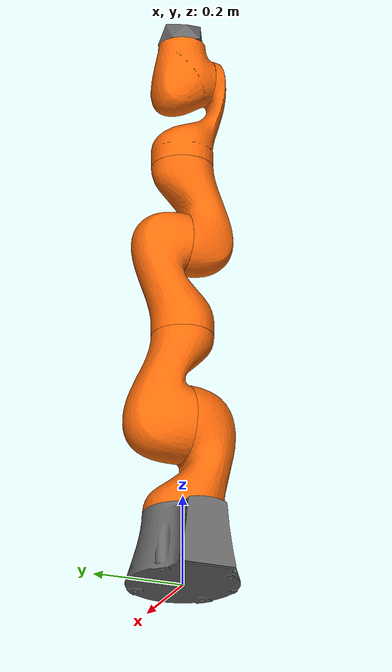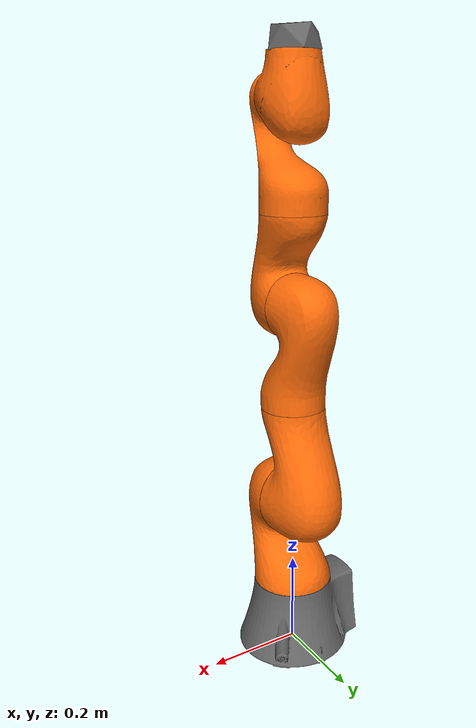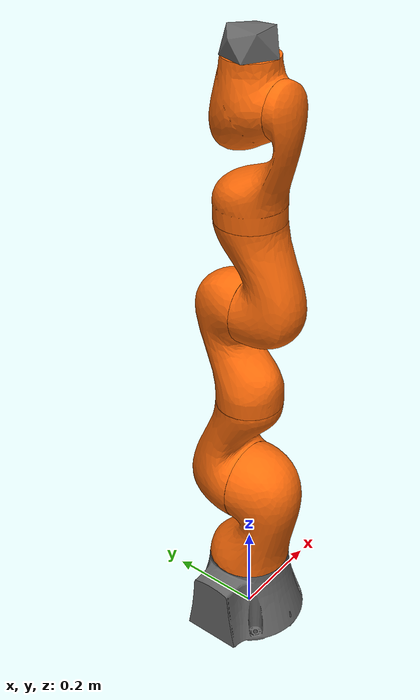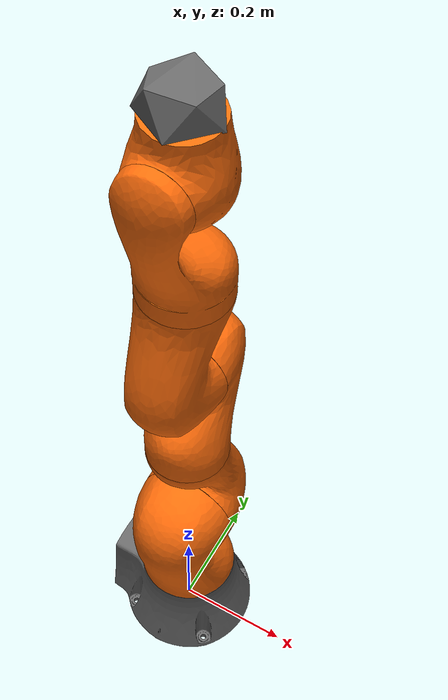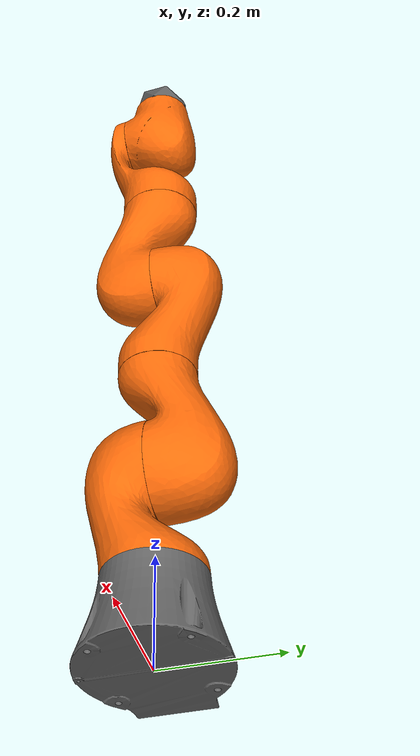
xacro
<?xml version="1.0" ?>
<!-- |    This document was autogenerated by xacro from iiwa14.urdf.xacro              | -->
<!-- |    EDITING THIS FILE BY HAND IS NOT RECOMMENDED                                 | -->
<robot name="iiwa14" xmlns:xacro="http://www.ros.org/wiki/xacro">
  <material name="Black">
    <color rgba="0.0 0.0 0.0 1.0"/>
  </material>
  <material name="Blue">
    <color rgba="0.0 0.0 0.8 1.0"/>
  </material>
  <material name="Green">
    <color rgba="0.0 0.8 0.0 1.0"/>
  </material>
  <material name="Grey">
    <color rgba="0.4 0.4 0.4 1.0"/>
  </material>
  <material name="Orange">
    <color rgba="1.0 0.423529411765 0.0392156862745 1.0"/>
  </material>
  <material name="Brown">
    <color rgba="0.870588235294 0.811764705882 0.764705882353 1.0"/>
  </material>
  <material name="Red">
    <color rgba="0.8 0.0 0.0 1.0"/>
  </material>
  <material name="White">
    <color rgba="1.0 1.0 1.0 1.0"/>
  </material>
  <!-- Fix to world just for testing -->
  <link name="world"/>
  <!--joint between {parent} and link_0-->
  <joint name="world_iiwa_joint" type="fixed">
    <origin rpy="0 0 0" xyz="0 0 0"/>
    <parent link="world"/>
    <child link="iiwa_link_0"/>
  </joint>
  <link name="iiwa_link_0">
    <inertial>
      <origin rpy="0 0 0" xyz="-0.1 0 0.07"/>
      <mass value="5"/>
      <inertia ixx="0.05" ixy="0" ixz="0" iyy="0.06" iyz="0" izz="0.03"/>
    </inertial>
    <visual>
      <origin rpy="0 0 0" xyz="0 0 0"/>
      <geometry>
        <mesh filename="package://iiwa_description/meshes/iiwa14/visual/link_0.stl"/>
      </geometry>
      <material name="Grey"/>
    </visual>
    <collision>
      <origin rpy="0 0 0" xyz="0 0 0"/>
      <geometry>
        <mesh filename="package://iiwa_description/meshes/iiwa14/collision/link_0_s.stl"/>
      </geometry>
      <material name="Grey"/>
    </collision>
  </link>
  <!-- joint between link_0 and link_1 -->
  <joint name="iiwa_joint_1" type="revolute">
    <parent link="iiwa_link_0"/>
    <child link="iiwa_link_1"/>
    <origin rpy="0 0 0" xyz="0 0 0.1575"/>
    <axis xyz="0 0 1"/>
    <limit effort="300" lower="-2.96705972839" upper="2.96705972839" velocity="10"/>
    <safety_controller k_position="100" k_velocity="2" soft_lower_limit="-2.93215314335" soft_upper_limit="2.93215314335"/>
    <dynamics damping="0.5"/>
  </joint>
  <link name="iiwa_link_1">
    <inertial>
      <origin rpy="0 0 0" xyz="0 -0.03 0.12"/>
      <mass value="4"/>
      <inertia ixx="0.1" ixy="0" ixz="0" iyy="0.09" iyz="0" izz="0.02"/>
    </inertial>
    <visual>
      <origin rpy="0 0 0" xyz="0 0 0"/>
      <geometry>
        <mesh filename="package://iiwa_description/meshes/iiwa14/visual/link_1.stl"/>
      </geometry>
      <material name="Orange"/>
    </visual>
    <collision>
      <origin rpy="0 0 0" xyz="0 0 0"/>
      <geometry>
        <mesh filename="package://iiwa_description/meshes/iiwa14/collision/link_1_s.stl"/>
      </geometry>
      <material name="Orange"/>
    </collision>
  </link>
  <!-- joint between link_1 and link_2 -->
  <joint name="iiwa_joint_2" type="revolute">
    <parent link="iiwa_link_1"/>
    <child link="iiwa_link_2"/>
    <origin rpy="1.57079632679   0 3.14159265359" xyz="0 0 0.2025"/>
    <axis xyz="0 0 1"/>
    <limit effort="300" lower="-2.09439510239" upper="2.09439510239" velocity="10"/>
    <safety_controller k_position="100" k_velocity="2" soft_lower_limit="-2.05948851735" soft_upper_limit="2.05948851735"/>
    <dynamics damping="0.5"/>
  </joint>
  <link name="iiwa_link_2">
    <inertial>
      <origin rpy="0 0 0" xyz="0.0003 0.059 0.042"/>
      <mass value="4"/>
      <inertia ixx="0.05" ixy="0" ixz="0" iyy="0.018" iyz="0" izz="0.044"/>
    </inertial>
    <visual>
      <origin rpy="0 0 0" xyz="0 0 0"/>
      <geometry>
        <mesh filename="package://iiwa_description/meshes/iiwa14/visual/link_2.stl"/>
      </geometry>
      <material name="Orange"/>
    </visual>
    <collision>
      <origin rpy="0 0 0" xyz="0 0 0"/>
      <geometry>
        <mesh filename="package://iiwa_description/meshes/iiwa14/collision/link_2_s.stl"/>
      </geometry>
      <material name="Orange"/>
    </collision>
  </link>
  <!-- joint between link_2 and link_3 -->
  <joint name="iiwa_joint_3" type="revolute">
    <parent link="iiwa_link_2"/>
    <child link="iiwa_link_3"/>
    <origin rpy="1.57079632679 0 3.14159265359" xyz="0 0.2045 0"/>
    <axis xyz="0 0 1"/>
    <limit effort="300" lower="-2.96705972839" upper="2.96705972839" velocity="10"/>
    <safety_controller k_position="100" k_velocity="2" soft_lower_limit="-2.93215314335" soft_upper_limit="2.93215314335"/>
    <dynamics damping="0.5"/>
  </joint>
  <link name="iiwa_link_3">
    <inertial>
      <origin rpy="0 0 0" xyz="0 0.03 0.13"/>
      <mass value="3"/>
      <inertia ixx="0.08" ixy="0" ixz="0" iyy="0.075" iyz="0" izz="0.01"/>
    </inertial>
    <visual>
      <origin rpy="0 0 0" xyz="0 0 0"/>
      <geometry>
        <mesh filename="package://iiwa_description/meshes/iiwa14/visual/link_3.stl"/>
      </geometry>
      <material name="Orange"/>
    </visual>
    <collision>
      <origin rpy="0 0 0" xyz="0 0 0"/>
      <geometry>
        <mesh filename="package://iiwa_description/meshes/iiwa14/collision/link_3_s.stl"/>
      </geometry>
      <material name="Orange"/>
    </collision>
  </link>
  <!-- joint between link_3 and link_4 -->
  <joint name="iiwa_joint_4" type="revolute">
    <parent link="iiwa_link_3"/>
    <child link="iiwa_link_4"/>
    <origin rpy="1.57079632679 0 0" xyz="0 0 0.2155"/>
    <axis xyz="0 0 1"/>
    <limit effort="300" lower="-2.09439510239" upper="2.09439510239" velocity="10"/>
    <safety_controller k_position="100" k_velocity="2" soft_lower_limit="-2.05948851735" soft_upper_limit="2.05948851735"/>
    <dynamics damping="0.5"/>
  </joint>
  <link name="iiwa_link_4">
    <inertial>
      <origin rpy="0 0 0" xyz="0 0.067 0.034"/>
      <mass value="2.7"/>
      <inertia ixx="0.03" ixy="0" ixz="0" iyy="0.01" iyz="0" izz="0.029"/>
    </inertial>
    <visual>
      <origin rpy="0 0 0" xyz="0 0 0"/>
      <geometry>
        <mesh filename="package://iiwa_description/meshes/iiwa14/visual/link_4.stl"/>
      </geometry>
      <material name="Orange"/>
    </visual>
    <collision>
      <origin rpy="0 0 0" xyz="0 0 0"/>
      <geometry>
        <mesh filename="package://iiwa_description/meshes/iiwa14/collision/link_4_s.stl"/>
      </geometry>
      <material name="Orange"/>
    </collision>
  </link>
  <!-- joint between link_4 and link_5 -->
  <joint name="iiwa_joint_5" type="revolute">
    <parent link="iiwa_link_4"/>
    <child link="iiwa_link_5"/>
    <origin rpy="-1.57079632679 3.14159265359 0" xyz="0 0.1845 0"/>
    <axis xyz="0 0 1"/>
    <limit effort="300" lower="-2.96705972839" upper="2.96705972839" velocity="10"/>
    <safety_controller k_position="100" k_velocity="2" soft_lower_limit="-2.93215314335" soft_upper_limit="2.93215314335"/>
    <dynamics damping="0.5"/>
  </joint>
  <link name="iiwa_link_5">
    <inertial>
      <origin rpy="0 0 0" xyz="0.0001 0.021 0.076"/>
      <mass value="1.7"/>
      <inertia ixx="0.02" ixy="0" ixz="0" iyy="0.018" iyz="0" izz="0.005"/>
    </inertial>
    <visual>
      <origin rpy="0 0 0" xyz="0 0 0"/>
      <geometry>
        <mesh filename="package://iiwa_description/meshes/iiwa14/visual/link_5.stl"/>
      </geometry>
      <material name="Orange"/>
    </visual>
    <collision>
      <origin rpy="0 0 0" xyz="0 0 0"/>
      <geometry>
        <mesh filename="package://iiwa_description/meshes/iiwa14/collision/link_5_s.stl"/>
      </geometry>
      <material name="Orange"/>
    </collision>
  </link>
  <!-- joint between link_5 and link_6 -->
  <joint name="iiwa_joint_6" type="revolute">
    <parent link="iiwa_link_5"/>
    <child link="iiwa_link_6"/>
    <origin rpy="1.57079632679 0 0" xyz="0 0 0.2155"/>
    <axis xyz="0 0 1"/>
    <limit effort="300" lower="-2.09439510239" upper="2.09439510239" velocity="10"/>
    <safety_controller k_position="100" k_velocity="2" soft_lower_limit="-2.05948851735" soft_upper_limit="2.05948851735"/>
    <dynamics damping="0.5"/>
  </joint>
  <link name="iiwa_link_6">
    <inertial>
      <origin rpy="0 0 0" xyz="0 0.0006 0.0004"/>
      <mass value="1.8"/>
      <inertia ixx="0.005" ixy="0" ixz="0" iyy="0.0036" iyz="0" izz="0.0047"/>
    </inertial>
    <visual>
      <origin rpy="0 0 0" xyz="0 0 0"/>
      <geometry>
        <mesh filename="package://iiwa_description/meshes/iiwa14/visual/link_6.stl"/>
      </geometry>
      <material name="Orange"/>
    </visual>
    <collision>
      <origin rpy="0 0 0" xyz="0 0 0"/>
      <geometry>
        <mesh filename="package://iiwa_description/meshes/iiwa14/collision/link_6_s.stl"/>
      </geometry>
      <material name="Orange"/>
    </collision>
  </link>
  <!-- joint between link_6 and link_7 -->
  <joint name="iiwa_joint_7" type="revolute">
    <parent link="iiwa_link_6"/>
    <child link="iiwa_link_7"/>
    <origin rpy="-1.57079632679 3.14159265359 0" xyz="0 0.081 0"/>
    <axis xyz="0 0 1"/>
    <limit effort="300" lower="-3.05432619099" upper="3.05432619099" velocity="10"/>
    <safety_controller k_position="100" k_velocity="2" soft_lower_limit="-3.01941960595" soft_upper_limit="3.01941960595"/>
    <dynamics damping="0.5"/>
  </joint>
  <link name="iiwa_link_7">
    <inertial>
      <origin rpy="0 0 0" xyz="0 0 0.02"/>
      <mass value="0.3"/>
      <inertia ixx="0.001" ixy="0" ixz="0" iyy="0.001" iyz="0" izz="0.001"/>
    </inertial>
    <visual>
      <origin rpy="0 0 0" xyz="0 0 0"/>
      <geometry>
        <mesh filename="package://iiwa_description/meshes/iiwa14/visual/link_7.stl"/>
      </geometry>
      <material name="Grey"/>
    </visual>
    <collision>
      <origin rpy="0 0 0" xyz="0 0 0"/>
      <geometry>
        <mesh filename="package://iiwa_description/meshes/iiwa14/collision/link_7_s.stl"/>
      </geometry>
      <material name="Grey"/>
    </collision>
  </link>
  <joint name="iiwa_joint_ee" type="fixed">
    <parent link="iiwa_link_7"/>
    <child link="iiwa_link_ee"/>
    <origin rpy="0 0 0" xyz="0 0 0.045"/>
  </joint>
  <link name="iiwa_link_ee">
    </link>
</robot>
